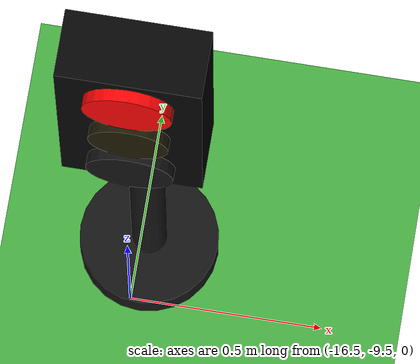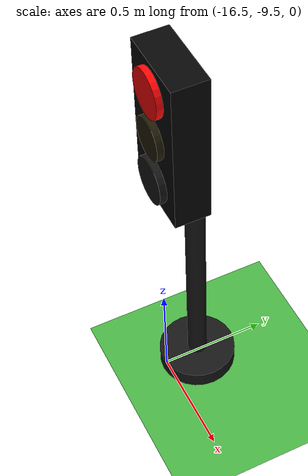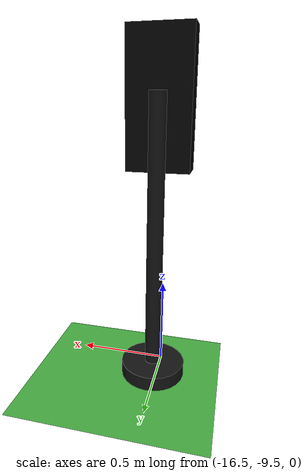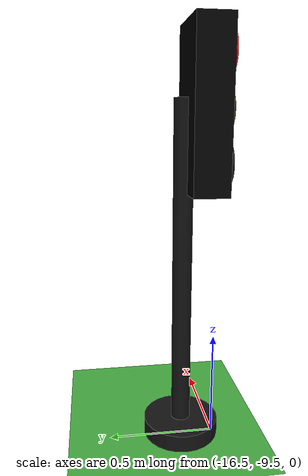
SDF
<sdf version="1.10">
 <world name="city_second">
  <model name="ground_plane">
   <static>true</static>
   <link name="link">
    <collision name="collision">
     <geometry><plane><normal>0 0 1</normal><size>300 300</size></plane></geometry>
    </collision>
    <visual name="visual">
     <geometry><plane><normal>0 0 1</normal><size>300 300</size></plane></geometry>
     <material>
      <ambient>0.280000001 0.689999998 0.25999999 1</ambient>
      <diffuse>0.280000001 0.689999998 0.25999999 1</diffuse>
      <specular>0.0299999993 0.0299999993 0.0299999993 1</specular>
     </material>
    </visual>
    <inertial>
     <mass>1</mass>
     <inertia><ixx>1</ixx><ixy>0</ixy><ixz>0</ixz><iyy>1</iyy><iyz>0</iyz><izz>1</izz></inertia>
    </inertial>
   </link>
  </model>
  <model name="simple_traffic_light_red_south_1">
   <static>true</static>
   <pose>-16.475416655542112 -9.3486778863797735 0 0 0 -3.1415900000000754</pose>
   <link name="base">
    <pose>0 0 0.040000000000000001 0 0 0</pose>
    <collision name="collision">
     <geometry>
      <cylinder><radius>0.17999999999999999</radius><length>0.080000000000000002</length></cylinder>
     </geometry>
    </collision>
    <visual name="visual">
     <geometry>
      <cylinder><radius>0.17999999999999999</radius><length>0.080000000000000002</length></cylinder>
     </geometry>
     <material>
      <ambient>0.0799999982 0.0799999982 0.0799999982 1</ambient>
      <diffuse>0.0799999982 0.0799999982 0.0799999982 1</diffuse>
      <specular>0.150000006 0.150000006 0.150000006 1</specular>
      <emissive>0 0 0 1</emissive>
     </material>
    </visual>
    <inertial>
     <mass>1</mass>
     <inertia><ixx>1</ixx><ixy>0</ixy><ixz>0</ixz><iyy>1</iyy><iyz>0</iyz><izz>1</izz></inertia>
    </inertial>
   </link>
   <link name="pole">
    <pose>0 5.3290705182007514e-15 0.80000000000000016 0 0 0</pose>
    <collision name="collision">
     <geometry>
      <cylinder><radius>0.044999999999999998</radius><length>1.6000000000000001</length></cylinder>
     </geometry>
    </collision>
    <visual name="visual">
     <geometry>
      <cylinder><radius>0.044999999999999998</radius><length>1.6000000000000001</length></cylinder>
     </geometry>
     <material>
      <ambient>0.0799999982 0.0799999982 0.0799999982 1</ambient>
      <diffuse>0.0799999982 0.0799999982 0.0799999982 1</diffuse>
      <specular>0.150000006 0.150000006 0.150000006 1</specular>
      <emissive>0 0 0 1</emissive>
     </material>
    </visual>
    <inertial>
     <mass>1</mass>
     <inertia><ixx>1</ixx><ixy>0</ixy><ixz>0</ixz><iyy>1</iyy><iyz>0</iyz><izz>1</izz></inertia>
    </inertial>
   </link>
   <link name="signal_box">
    <pose>7.1054273576010019e-15 0.09000000000000874 1.5500000000000003 0 0 0</pose>
    <collision name="collision">
     <geometry><box><size>0.34000000000000002 0.16 0.71999999999999997</size></box></geometry>
    </collision>
    <visual name="visual">
     <geometry><box><size>0.34000000000000002 0.16 0.71999999999999997</size></box></geometry>
     <material>
      <ambient>0.0199999996 0.0199999996 0.0199999996 1</ambient>
      <diffuse>0.0199999996 0.0199999996 0.0199999996 1</diffuse>
      <specular>0.150000006 0.150000006 0.150000006 1</specular>
      <emissive>0 0 0 1</emissive>
     </material>
    </visual>
    <inertial>
     <mass>1</mass>
     <inertia><ixx>1</ixx><ixy>0</ixy><ixz>0</ixz><iyy>1</iyy><iyz>0</iyz><izz>1</izz></inertia>
    </inertial>
   </link>
   <link name="red_lens">
    <pose>0 0.18100000000000271 1.78 1.5707963267999998 -8.9688530999915811e-17 2.8884837225759793e-16</pose>
    <collision name="collision">
     <geometry><cylinder><radius>0.105</radius><length>0.035000000000000003</length></cylinder></geometry>
    </collision>
    <visual name="visual">
     <geometry><cylinder><radius>0.105</radius><length>0.035000000000000003</length></cylinder></geometry>
     <material>
      <ambient>1 0.0199999996 0.0199999996 1</ambient>
      <diffuse>1 0.0199999996 0.0199999996 1</diffuse>
      <specular>0.150000006 0.150000006 0.150000006 1</specular>
      <emissive>1 0.0199999996 0.0199999996 1</emissive>
     </material>
    </visual>
    <inertial>
     <mass>1</mass>
     <inertia><ixx>1</ixx><ixy>0</ixy><ixz>0</ixz><iyy>1</iyy><iyz>0</iyz><izz>1</izz></inertia>
    </inertial>
   </link>
   <link name="yellow_lens">
    <pose>7.1054273576010019e-15 0.18200000000000927 1.5500000000000003 1.5707963267999998 -8.9688530999915811e-17 2.8884837225759793e-16</pose>
    <collision name="collision">
     <geometry>
      <cylinder><radius>0.095000000000000001</radius><length>0.035000000000000003</length></cylinder>
     </geometry>
    </collision>
    <visual name="visual">
     <geometry>
      <cylinder><radius>0.095000000000000001</radius><length>0.035000000000000003</length></cylinder>
     </geometry>
     <material>
      <ambient>0.119999997 0.100000001 0.0199999996 1</ambient>
      <diffuse>0.119999997 0.100000001 0.0199999996 1</diffuse>
      <specular>0.150000006 0.150000006 0.150000006 1</specular>
      <emissive>0 0 0 1</emissive>
     </material>
    </visual>
    <inertial>
     <mass>1</mass>
     <inertia><ixx>1</ixx><ixy>0</ixy><ixz>0</ixz><iyy>1</iyy><iyz>0</iyz><izz>1</izz></inertia>
    </inertial>
   </link>
   <link name="green_lens">
    <pose>-7.1054273576010019e-15 0.18300000000000516 1.3200000000000003 1.5707963267999998 -8.9688530999915811e-17 2.8884837225759793e-16</pose>
    <collision name="collision">
     <geometry><cylinder><radius>0.105</radius><length>0.035000000000000003</length></cylinder></geometry>
    </collision>
    <visual name="visual">
     <geometry><cylinder><radius>0.105</radius><length>0.035000000000000003</length></cylinder></geometry>
     <material>
      <ambient>0.0799999982 0.0799999982 0.0799999982 1</ambient>
      <diffuse>0.0799999982 0.0799999982 0.0799999982 1</diffuse>
      <specular>0.150000006 0.150000006 0.150000006 1</specular>
      <emissive>0 0 0 1</emissive>
     </material>
    </visual>
    <inertial>
     <mass>1</mass>
     <inertia><ixx>1</ixx><ixy>0</ixy><ixz>0</ixz><iyy>1</iyy><iyz>0</iyz><izz>1</izz></inertia>
    </inertial>
   </link>
  </model>
 </world>
</sdf>
